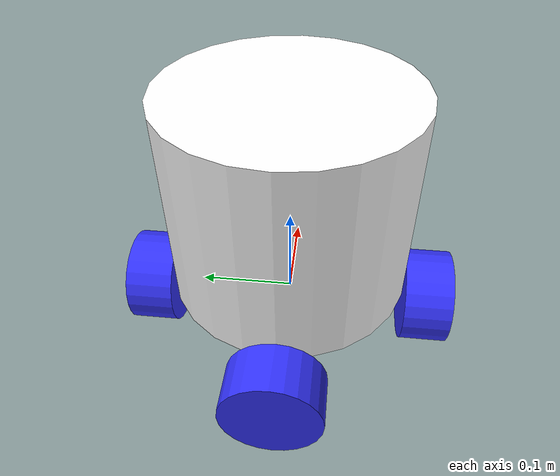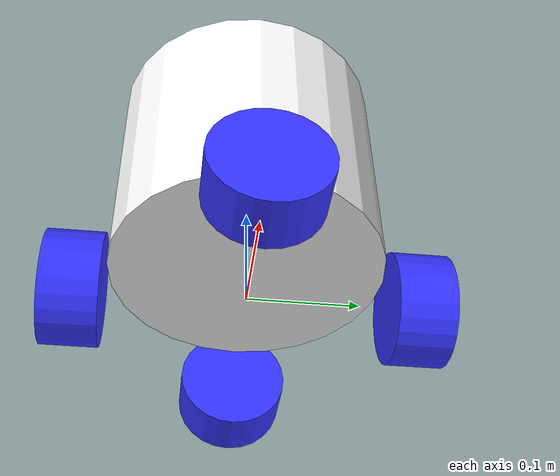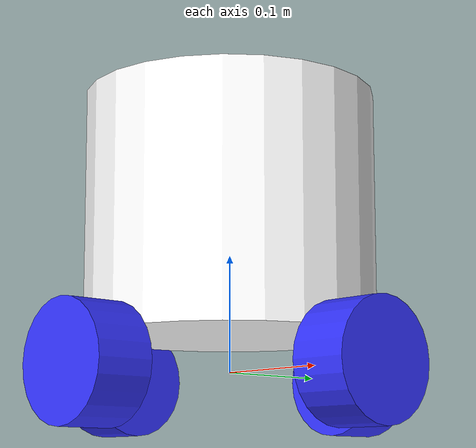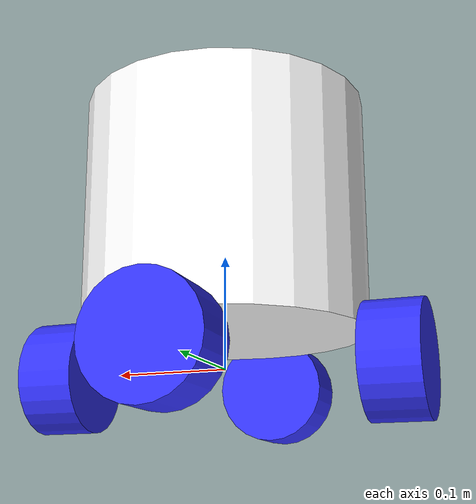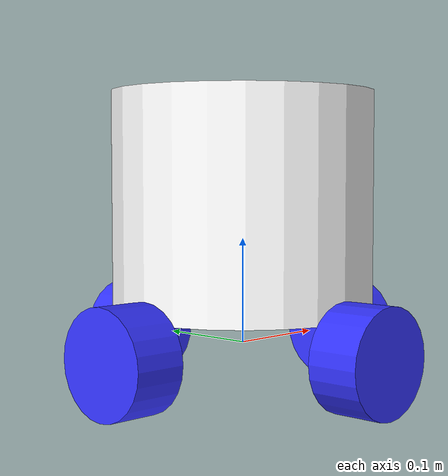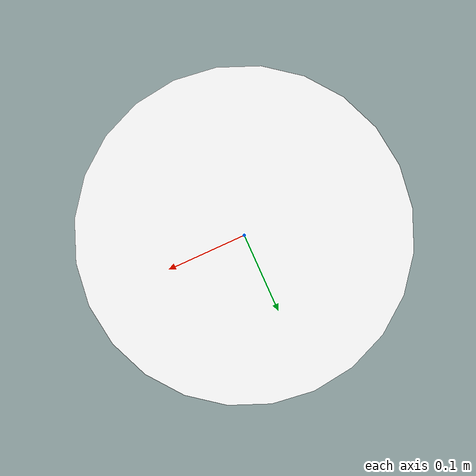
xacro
<?xml version="1.0"?>
<robot xmlns:xacro="http://www.ros.org/wiki/xacro">

    <xacro:include filename="inertial.xacro"/>

    <!-- ######## COLORS ######## -->

    <material name="white">
        <color rgba="1 1 1 1" />
    </material>

    <material name="orange">
        <color rgba="1 0.3 0.1 1"/>
    </material>

    <material name="blue">
        <color rgba="0.2 0.2 1 1"/>
    </material>

    <material name="black">
        <color rgba="0 0 0 1"/>
    </material>

    <material name="red">
        <color rgba="1 0 0 1"/>
    </material>

    <!-- ######## BASE LINK ######## -->
    <link name="base_link">
    </link>

    <!-- ######## BASE FOOTPRINT ######## -->

    <joint name="base_footprint_joint" type="fixed">
        <parent link="base_link"/>
        <child link="base_footprint"/>
        <origin xyz="0 0 0" rpy="0 0 0"/>
    </joint>

    <link name="base_footprint">
    </link>

    <!-- ######## CHASSIS ######## -->

    <!-- JOINT -->
    <joint name="chassis_joint" type="fixed">
        <parent link="base_link"/>
        <child link="chassis"/>
        <origin xyz="0 0 0.03"/>
    </joint>

    <!-- LINK -->
    <link name="chassis">
        <visual>
            <origin xyz="0 0 0.105" rpy="0 0 0"/>
            <geometry>
                <cylinder radius="0.125" length="0.21"/>
            </geometry>
            <material name="white"/>
        </visual>
        <collision>
            <origin xyz="0 0 0" rpy="0 0 0"/>
            <geometry>
                <cylinder radius="0.125" length="0.21"/>
            </geometry>
        </collision>
        <xacro:inertial_cylinder mass="0.5" length="0.21" radius="0.125">
            <origin xyz="0 0 0" rpy="0 0 0"/>
        </xacro:inertial_cylinder>
    </link>

    <!-- ######## LEFT WHEEL ######## -->

    <!-- JOINT -->
    <joint name="left_wheel_joint" type="continuous">
        <parent link="base_link"/>
        <child link="left_wheel"/>
        <origin xyz="0 0.150 0" rpy="${pi/2} 0 0"/>
        <axis xyz="0 0 1"/>
    </joint>

    <!-- LINK -->
    <link name="left_wheel">
        <visual>
            <origin xyz="0 0 0" rpy="0 0 0"/>
            <geometry>
                <cylinder radius="0.05" length="0.05"/>
            </geometry>
            <material name="blue"/>
        </visual>
        <collision>
            <origin xyz="0 0 0" rpy="0 0 0"/>
            <geometry>
                <cylinder radius="0.05" length="0.05"/>
            </geometry>
        </collision>
        <xacro:inertial_cylinder mass="0.1" length="0.05" radius="0.05">
            <origin xyz="0 0 0" rpy="0 0 0"/>
        </xacro:inertial_cylinder>

    </link>

    <gazebo reference="left_wheel">
        <material>Gazebo/Blue</material>
    </gazebo>

    <!-- ######## RIGHT WHEEL ######## -->

    <!-- JOINT -->
    <joint name="right_wheel_joint" type="continuous">
        <parent link="base_link"/>
        <child link="right_wheel"/>
        <origin xyz="0 -0.150 0" rpy="${pi/2} 0 0"/>
        <axis xyz="0 0 -1"/>
    </joint>

    <!-- LINK -->
    <link name="right_wheel">
        <visual>
            <origin xyz="0 0 0" rpy="0 0 0"/>
            <geometry>
                <cylinder radius="0.05" length="0.05"/>
            </geometry>
            <material name="blue"/>
        </visual>
        <collision>
            <origin xyz="0 0 0" rpy="0 0 0"/>
            <geometry>
                <cylinder radius="0.05" length="0.05"/>
            </geometry>
        </collision>
        <xacro:inertial_cylinder mass="0.1" length="0.05" radius="0.05">
            <origin xyz="0 0 0" rpy="0 0 0"/>
        </xacro:inertial_cylinder>
    </link>

    <gazebo reference="right_wheel">
        <material>Gazebo/Blue</material>
    </gazebo>

    <!-- ######## FRONT WHEEL ######## -->

    <!-- JOINT -->
    <joint name="front_wheel_joint" type="continuous">
        <parent link="base_link"/>
        <child link="front_wheel"/>
        <origin xyz="0.150 0 0" rpy="0 ${pi/2} 0"/>
        <axis xyz="0 0 1"/>
    </joint>

    <!-- LINK -->
    <link name="front_wheel">
        <visual>
            <origin xyz="0 0 0" rpy="0 0 0"/>
            <geometry>
                <cylinder radius="0.05" length="0.05"/>
            </geometry>
            <material name="blue"/>
        </visual>
        <collision>
            <origin xyz="0 0 0" rpy="0 0 0"/>
            <geometry>
                <cylinder radius="0.05" length="0.05"/>
            </geometry>
        </collision>
        <xacro:inertial_cylinder mass="0.1" length="0.05" radius="0.05">
            <origin xyz="0 0 0" rpy="0 0 0"/>
        </xacro:inertial_cylinder>
    </link>

    <gazebo reference="front_wheel">
        <material>Gazebo/Blue</material>
    </gazebo>

    <!-- ######## BACK WHEEL ######## -->

    <!-- JOINT -->
    <joint name="back_wheel_joint" type="continuous">
        <parent link="base_link"/>
        <child link="back_wheel"/>
        <origin xyz="-0.150 0 0" rpy="0 ${pi/2} 0"/>
        <axis xyz="0 0 1"/>
    </joint>

    <!-- LINK -->
    <link name="back_wheel">
        <visual>
            <origin xyz="0 0 0" rpy="0 0 0"/>
            <geometry>
                <cylinder radius="0.05" length="0.05"/>
            </geometry>
            <material name="blue"/>
        </visual>
        <collision>
            <origin xyz="0 0 0" rpy="0 0 0"/>
            <geometry>
                <cylinder radius="0.05" length="0.05"/>
            </geometry>
        </collision>
        <xacro:inertial_cylinder mass="0.1" length="0.05" radius="0.05">
            <origin xyz="0 0 0" rpy="0 0 0"/>
        </xacro:inertial_cylinder>
    </link>

    <gazebo reference="back_wheel">
        <material>Gazebo/Blue</material>
    </gazebo>

</robot>
